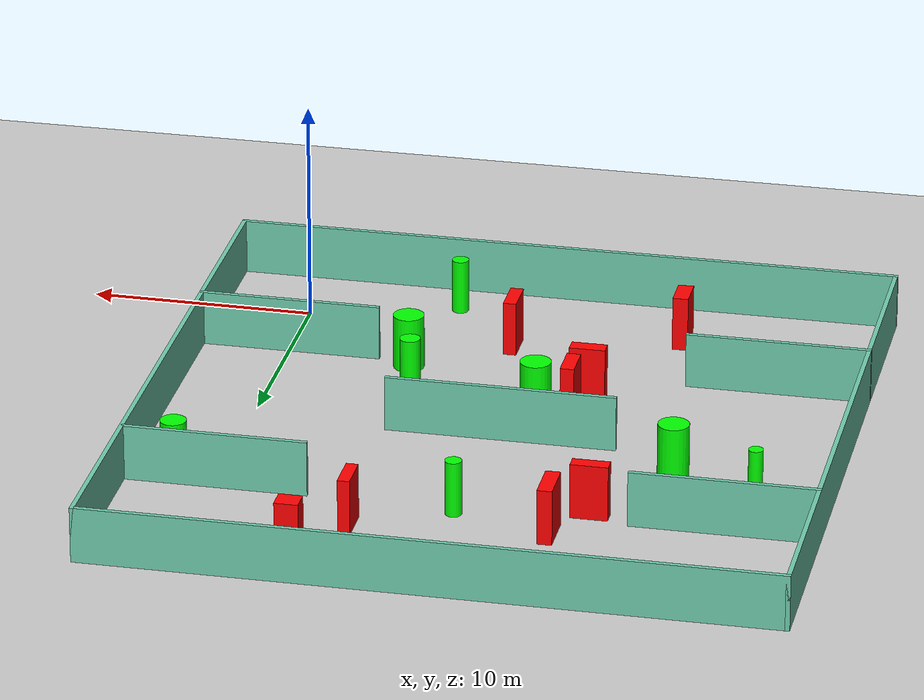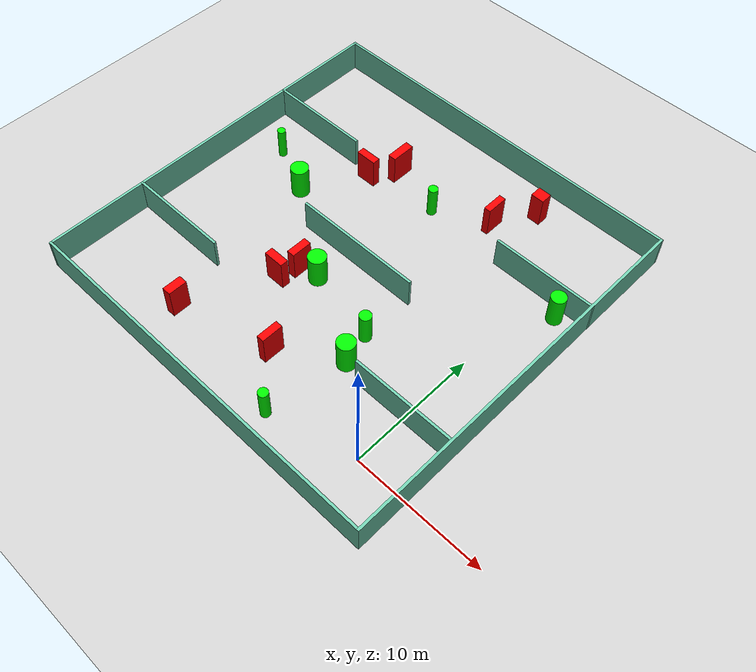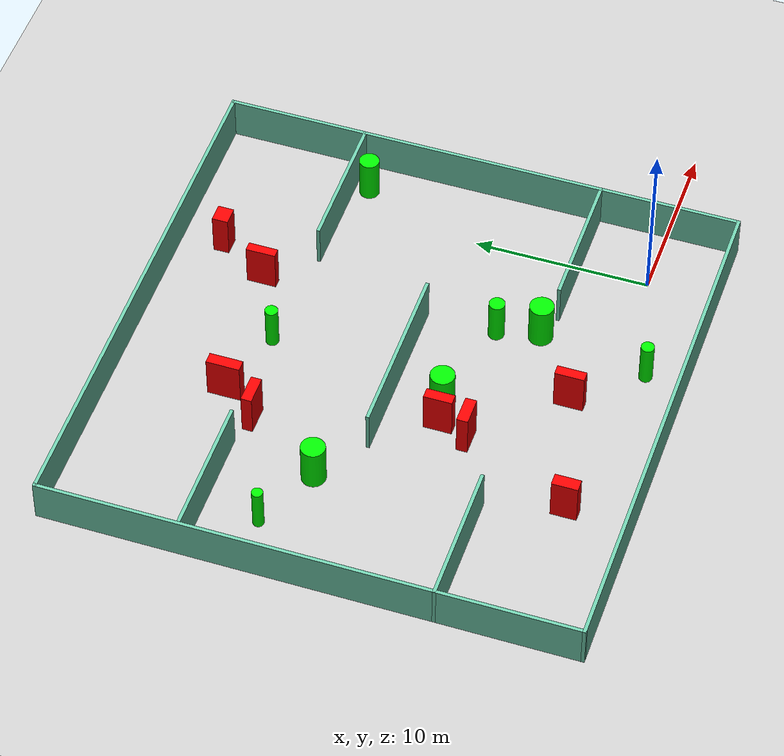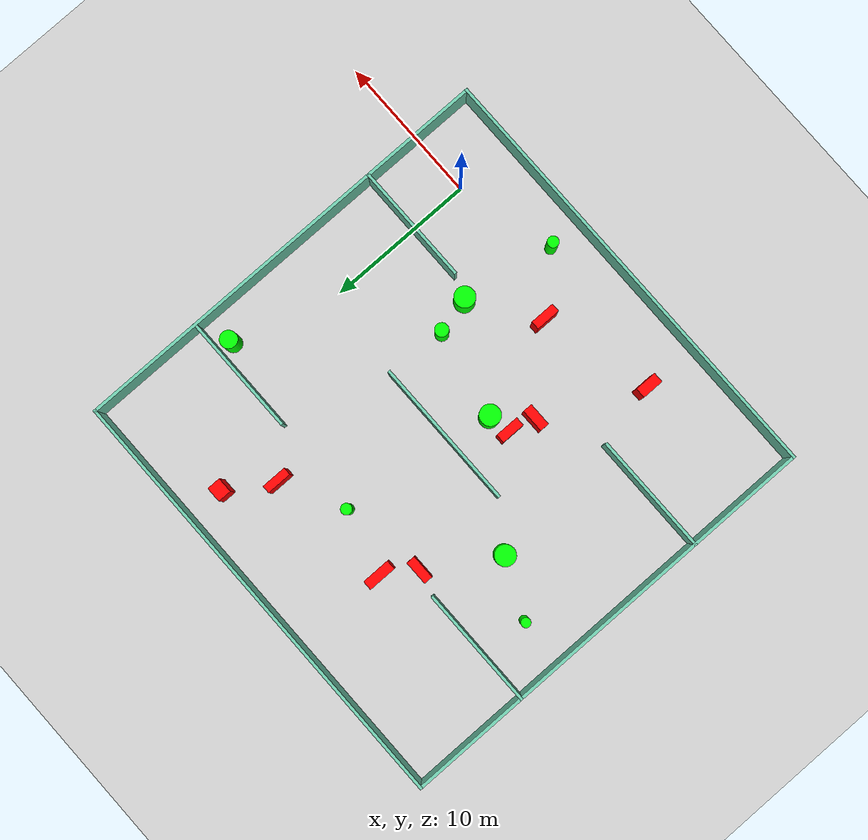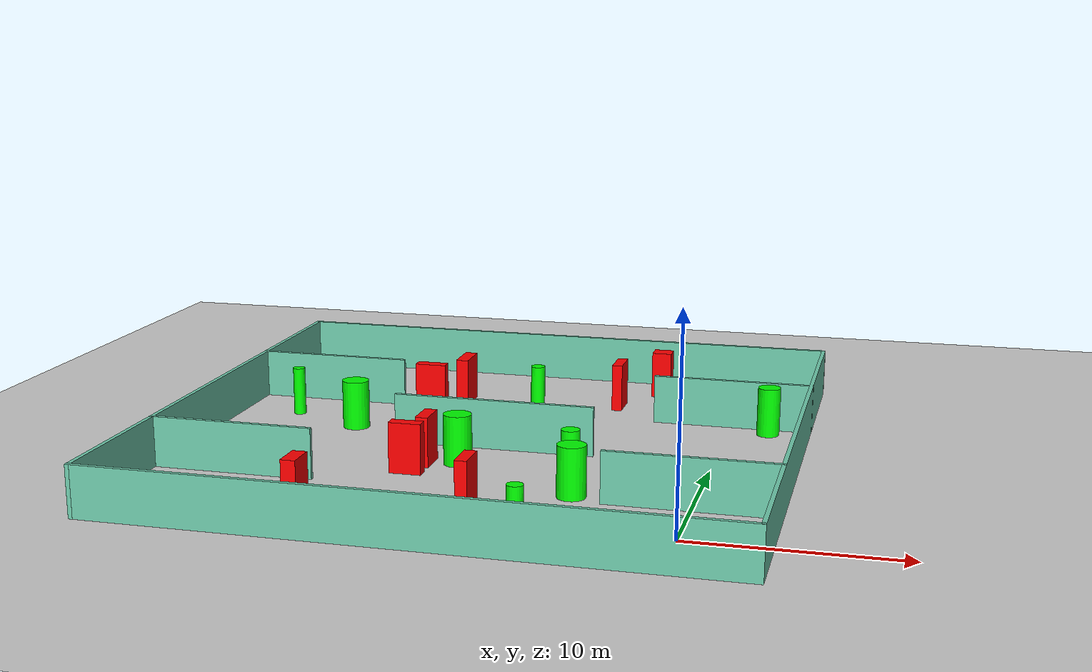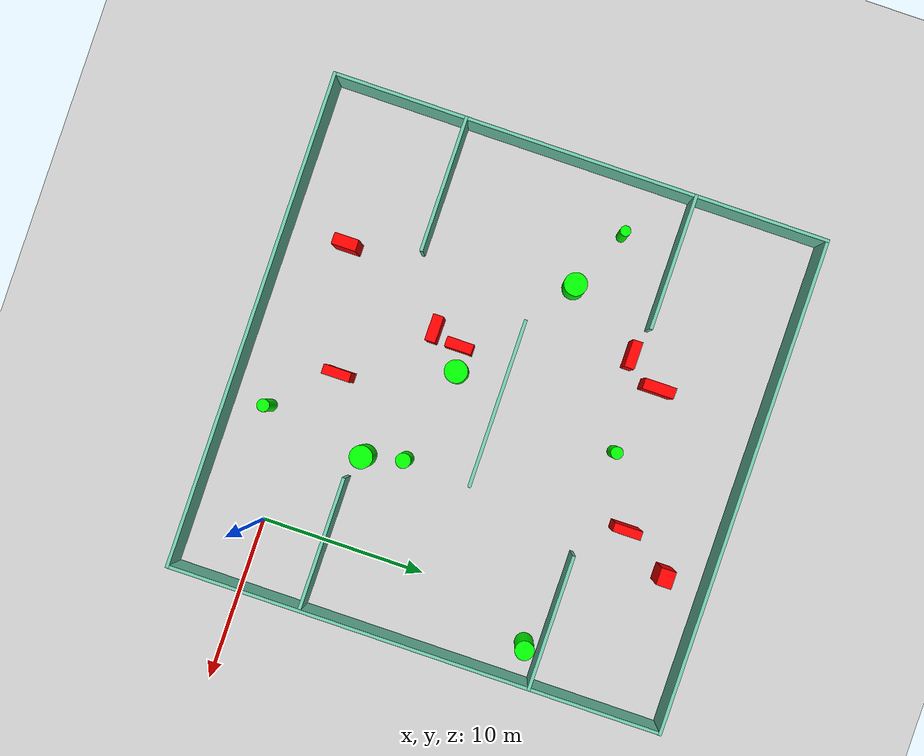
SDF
<sdf version="1.7">
 <world name="default">
  <light name="sun" type="directional">
   <pose>0 0 10 0 -0 0</pose>
   <diffuse>0.8 0.8 0.8 1</diffuse>
   <specular>0.2 0.2 0.2 1</specular>
   <attenuation>
    <range>1000</range>
    <constant>0.9</constant>
    <linear>0.01</linear>
    <quadratic>0.001</quadratic>
   </attenuation>
   <direction>-0.5 0.1 -0.9</direction>
   <spot><inner_angle>0</inner_angle><outer_angle>0</outer_angle><falloff>0</falloff></spot>
  </light>
  <model name="ground_plane">
   <static>1</static>
   <link name="link">
    <collision name="collision">
     <geometry><plane><normal>0 0 1</normal><size>100 100</size></plane></geometry>
     <surface>
      <contact><collide_bitmask>65535</collide_bitmask></contact>
      <friction><ode><mu>100</mu><mu2>50</mu2></ode></friction>
     </surface>
    </collision>
    <visual name="visual">
     <cast_shadows>0</cast_shadows>
     <geometry><plane><normal>0 0 1</normal><size>100 100</size></plane></geometry>
     <material>
      <script><uri>file://media/materials/scripts/gazebo.material</uri><name>Gazebo/Grey</name></script>
     </material>
    </visual>
   </link>
  </model>
  <gravity>0 0 -9.8</gravity>
  <magnetic_field>6e-06 2.3e-05 -4.2e-05</magnetic_field>
  <atmosphere type="adiabatic"/>
  <physics type="ode">
   <max_step_size>0.001</max_step_size>
   <real_time_factor>1</real_time_factor>
   <real_time_update_rate>1000</real_time_update_rate>
  </physics>
  <scene><ambient>0.4 0.4 0.4 1</ambient><background>0.7 0.7 0.7 1</background><shadows>1</shadows></scene>
  <spherical_coordinates>
   <surface_model>EARTH_WGS84</surface_model>
   <latitude_deg>0</latitude_deg>
   <longitude_deg>0</longitude_deg>
   <elevation>0</elevation>
   <heading_deg>0</heading_deg>
  </spherical_coordinates>
  <model name="my_base_walls">
   <link name="Wall_10">
    <collision name="Wall_10_Collision">
     <geometry><box><size>8.2 0.2 2.5</size></box></geometry>
     <pose>0 0 1.25 0 -0 0</pose>
    </collision>
    <visual name="Wall_10_Visual">
     <pose>0 0 1.25 0 -0 0</pose>
     <geometry><box><size>8.2 0.2 2.5</size></box></geometry>
     <material>
      <script><uri>file://media/materials/scripts/gazebo.material</uri><name>Gazebo/Grey</name></script>
      <ambient>0.435294 0.796078 0.67451 1</ambient>
     </material>
     <meta><layer>0</layer></meta>
    </visual>
    <pose>-11 -7 0 0 -0 0</pose>
   </link>
   <link name="Wall_12">
    <collision name="Wall_12_Collision">
     <geometry><box><size>8.2 0.2 2.5</size></box></geometry>
     <pose>0 0 1.25 0 -0 0</pose>
    </collision>
    <visual name="Wall_12_Visual">
     <pose>0 0 1.25 0 -0 0</pose>
     <geometry><box><size>8.2 0.2 2.5</size></box></geometry>
     <material>
      <script><uri>file://media/materials/scripts/gazebo.material</uri><name>Gazebo/Grey</name></script>
      <ambient>0.435294 0.796078 0.67451 1</ambient>
     </material>
     <meta><layer>0</layer></meta>
    </visual>
    <pose>-11 7 0 0 -0 0</pose>
   </link>
   <link name="Wall_14">
    <collision name="Wall_14_Collision">
     <geometry><box><size>8.2 0.2 2.5</size></box></geometry>
     <pose>0 0 1.25 0 -0 0</pose>
    </collision>
    <visual name="Wall_14_Visual">
     <pose>0 0 1.25 0 -0 0</pose>
     <geometry><box><size>8.2 0.2 2.5</size></box></geometry>
     <material>
      <script><uri>file://media/materials/scripts/gazebo.material</uri><name>Gazebo/Grey</name></script>
      <ambient>0.435294 0.796078 0.67451 1</ambient>
     </material>
     <meta><layer>0</layer></meta>
    </visual>
    <pose>11 7 0 0 -0 3.14159</pose>
   </link>
   <link name="Wall_16">
    <collision name="Wall_16_Collision">
     <geometry><box><size>10.2 0.2 2.5</size></box></geometry>
     <pose>0 0 1.25 0 -0 0</pose>
    </collision>
    <visual name="Wall_16_Visual">
     <pose>0 0 1.25 0 -0 0</pose>
     <geometry><box><size>10.2 0.2 2.5</size></box></geometry>
     <material>
      <script><uri>file://media/materials/scripts/gazebo.material</uri><name>Gazebo/Grey</name></script>
      <ambient>0.435294 0.796078 0.67451 1</ambient>
     </material>
     <meta><layer>0</layer></meta>
    </visual>
    <pose>0 0 0 0 -0 3.14159</pose>
   </link>
   <link name="Wall_2">
    <collision name="Wall_2_Collision">
     <geometry><box><size>30.2 0.2 2.5</size></box></geometry>
     <pose>0 0 1.25 0 -0 0</pose>
    </collision>
    <visual name="Wall_2_Visual">
     <pose>0 0 1.25 0 -0 0</pose>
     <geometry><box><size>30.2 0.2 2.5</size></box></geometry>
     <material>
      <script><uri>file://media/materials/scripts/gazebo.material</uri><name>Gazebo/Grey</name></script>
      <ambient>0.435294 0.796078 0.67451 1</ambient>
     </material>
     <meta><layer>0</layer></meta>
    </visual>
    <pose>0 -15 0 0 -0 3.14159</pose>
   </link>
   <link name="Wall_3">
    <collision name="Wall_3_Collision">
     <geometry><box><size>30.2 0.2 2.5</size></box></geometry>
     <pose>0 0 1.25 0 -0 0</pose>
    </collision>
    <visual name="Wall_3_Visual">
     <pose>0 0 1.25 0 -0 0</pose>
     <geometry><box><size>30.2 0.2 2.5</size></box></geometry>
     <material>
      <script><uri>file://media/materials/scripts/gazebo.material</uri><name>Gazebo/Grey</name></script>
      <ambient>0.435294 0.796078 0.67451 1</ambient>
     </material>
     <meta><layer>0</layer></meta>
    </visual>
    <pose>-15 0 0 0 -0 1.5708</pose>
   </link>
   <link name="Wall_4">
    <collision name="Wall_4_Collision">
     <geometry><box><size>30.2 0.2 2.5</size></box></geometry>
     <pose>0 0 1.25 0 -0 0</pose>
    </collision>
    <visual name="Wall_4_Visual">
     <pose>0 0 1.25 0 -0 0</pose>
     <geometry><box><size>30.2 0.2 2.5</size></box></geometry>
     <material>
      <script><uri>file://media/materials/scripts/gazebo.material</uri><name>Gazebo/Grey</name></script>
      <ambient>0.435294 0.796078 0.67451 1</ambient>
     </material>
     <meta><layer>0</layer></meta>
    </visual>
    <pose>0 15 0 0 -0 0</pose>
   </link>
   <link name="Wall_6">
    <collision name="Wall_6_Collision">
     <geometry><box><size>30.2 0.2 2.5</size></box></geometry>
     <pose>0 0 1.25 0 -0 0</pose>
    </collision>
    <visual name="Wall_6_Visual">
     <pose>0 0 1.25 0 -0 0</pose>
     <geometry><box><size>30.2 0.2 2.5</size></box></geometry>
     <material>
      <script><uri>file://media/materials/scripts/gazebo.material</uri><name>Gazebo/Grey</name></script>
      <ambient>0.435294 0.796078 0.67451 1</ambient>
     </material>
     <meta><layer>0</layer></meta>
    </visual>
    <pose>15 0 0 0 -0 1.5708</pose>
   </link>
   <link name="Wall_8">
    <collision name="Wall_8_Collision">
     <geometry><box><size>8.2 0.2 2.5</size></box></geometry>
     <pose>0 0 1.25 0 -0 0</pose>
    </collision>
    <visual name="Wall_8_Visual">
     <pose>0 0 1.25 0 -0 0</pose>
     <geometry><box><size>8.2 0.2 2.5</size></box></geometry>
     <material>
      <script><uri>file://media/materials/scripts/gazebo.material</uri><name>Gazebo/Grey</name></script>
      <ambient>0.435294 0.796078 0.67451 1</ambient>
     </material>
     <meta><layer>0</layer></meta>
    </visual>
    <pose>11 -7 0 0 -0 3.14159</pose>
   </link>
   <static>1</static>
   <pose>-11 11 0 0 -0 0</pose>
  </model>
  <model name="cylinder1">
   <static>1</static>
   <link name="link">
    <inertial>
     <mass>1</mass>
     <inertia><ixx>0.5</ixx><ixy>0</ixy><ixz>0</ixz><iyy>0.5</iyy><iyz>0</iyz><izz>1</izz></inertia>
    </inertial>
    <collision name="collision">
     <geometry><cylinder><radius>0.45344261995893737</radius><length>2.5</length></cylinder></geometry>
    </collision>
    <visual name="visual">
     <geometry><cylinder><radius>0.45344261995893737</radius><length>2.5</length></cylinder></geometry>
     <material>
      <ambient>0 1 0 1</ambient>
      <diffuse>0 1 0 1</diffuse>
      <specular>0.1 0.1 0.1 1</specular>
      <emissive>0 0 0 0</emissive>
     </material>
    </visual>
   </link>
   <pose>-6.1352704159999085 6.916691660784151 1.25 0 0 0</pose>
  </model>
  <model name="cylinder2">
   <static>1</static>
   <link name="link">
    <inertial>
     <mass>1</mass>
     <inertia><ixx>0.5</ixx><ixy>0</ixy><ixz>0</ixz><iyy>0.5</iyy><iyz>0</iyz><izz>1</izz></inertia>
    </inertial>
    <collision name="collision">
     <geometry><cylinder><radius>0.3752334312176133</radius><length>2.5</length></cylinder></geometry>
    </collision>
    <visual name="visual">
     <geometry><cylinder><radius>0.3752334312176133</radius><length>2.5</length></cylinder></geometry>
     <material>
      <ambient>0 1 0 1</ambient>
      <diffuse>0 1 0 1</diffuse>
      <specular>0.1 0.1 0.1 1</specular>
      <emissive>0 0 0 0</emissive>
     </material>
    </visual>
   </link>
   <pose>-6.559453560829072 -1.7537656227248868 1.25 0 0 0</pose>
  </model>
  <model name="cylinder3">
   <static>1</static>
   <link name="link">
    <inertial>
     <mass>1</mass>
     <inertia><ixx>0.5</ixx><ixy>0</ixy><ixz>0</ixz><iyy>0.5</iyy><iyz>0</iyz><izz>1</izz></inertia>
    </inertial>
    <collision name="collision">
     <geometry><cylinder><radius>0.6887467670775544</radius><length>2.5</length></cylinder></geometry>
    </collision>
    <visual name="visual">
     <geometry><cylinder><radius>0.6887467670775544</radius><length>2.5</length></cylinder></geometry>
     <material>
      <ambient>0 1 0 1</ambient>
      <diffuse>0 1 0 1</diffuse>
      <specular>0.1 0.1 0.1 1</specular>
      <emissive>0 0 0 0</emissive>
     </material>
    </visual>
   </link>
   <pose>-5.546667233819985 4.538153213615276 1.25 0 0 0</pose>
  </model>
  <model name="cylinder4">
   <static>1</static>
   <link name="link">
    <inertial>
     <mass>1</mass>
     <inertia><ixx>0.5</ixx><ixy>0</ixy><ixz>0</ixz><iyy>0.5</iyy><iyz>0</iyz><izz>1</izz></inertia>
    </inertial>
    <collision name="collision">
     <geometry><cylinder><radius>0.6889148988796123</radius><length>2.5</length></cylinder></geometry>
    </collision>
    <visual name="visual">
     <geometry><cylinder><radius>0.6889148988796123</radius><length>2.5</length></cylinder></geometry>
     <material>
      <ambient>0 1 0 1</ambient>
      <diffuse>0 1 0 1</diffuse>
      <specular>0.1 0.1 0.1 1</specular>
      <emissive>0 0 0 0</emissive>
     </material>
    </visual>
   </link>
   <pose>-18.955718595273964 13.057890873281078 1.25 0 0 0</pose>
  </model>
  <model name="cylinder5">
   <static>1</static>
   <link name="link">
    <inertial>
     <mass>1</mass>
     <inertia><ixx>0.5</ixx><ixy>0</ixy><ixz>0</ixz><iyy>0.5</iyy><iyz>0</iyz><izz>1</izz></inertia>
    </inertial>
    <collision name="collision">
     <geometry><cylinder><radius>0.36796601957130665</radius><length>2.5</length></cylinder></geometry>
    </collision>
    <visual name="visual">
     <geometry><cylinder><radius>0.36796601957130665</radius><length>2.5</length></cylinder></geometry>
     <material>
      <ambient>0 1 0 1</ambient>
      <diffuse>0 1 0 1</diffuse>
      <specular>0.1 0.1 0.1 1</specular>
      <emissive>0 0 0 0</emissive>
     </material>
    </visual>
   </link>
   <pose>-10.521550802481519 18.437373559480267 1.25 0 0 0</pose>
  </model>
  <model name="cylinder6">
   <static>1</static>
   <link name="link">
    <inertial>
     <mass>1</mass>
     <inertia><ixx>0.5</ixx><ixy>0</ixy><ixz>0</ixz><iyy>0.5</iyy><iyz>0</iyz><izz>1</izz></inertia>
    </inertial>
    <collision name="collision">
     <geometry><cylinder><radius>0.5751887224881173</radius><length>2.5</length></cylinder></geometry>
    </collision>
    <visual name="visual">
     <geometry><cylinder><radius>0.5751887224881173</radius><length>2.5</length></cylinder></geometry>
     <material>
      <ambient>0 1 0 1</ambient>
      <diffuse>0 1 0 1</diffuse>
      <specular>0.1 0.1 0.1 1</specular>
      <emissive>0 0 0 0</emissive>
     </material>
    </visual>
   </link>
   <pose>1.9745359330041339 17.058799900431325 1.25 0 0 0</pose>
  </model>
  <model name="cylinder7">
   <static>1</static>
   <link name="link">
    <inertial>
     <mass>1</mass>
     <inertia><ixx>0.5</ixx><ixy>0</ixy><ixz>0</ixz><iyy>0.5</iyy><iyz>0</iyz><izz>1</izz></inertia>
    </inertial>
    <collision name="collision">
     <geometry><cylinder><radius>0.315434996236496</radius><length>2.5</length></cylinder></geometry>
    </collision>
    <visual name="visual">
     <geometry><cylinder><radius>0.315434996236496</radius><length>2.5</length></cylinder></geometry>
     <material>
      <ambient>0 1 0 1</ambient>
      <diffuse>0 1 0 1</diffuse>
      <specular>0.1 0.1 0.1 1</specular>
      <emissive>0 0 0 0</emissive>
     </material>
    </visual>
   </link>
   <pose>-22.787054475274687 14.790238040677078 1.25 0 0 0</pose>
  </model>
  <model name="cylinder8">
   <static>1</static>
   <link name="link">
    <inertial>
     <mass>1</mass>
     <inertia><ixx>0.5</ixx><ixy>0</ixy><ixz>0</ixz><iyy>0.5</iyy><iyz>0</iyz><izz>1</izz></inertia>
    </inertial>
    <collision name="collision">
     <geometry><cylinder><radius>0.6924642510337404</radius><length>2.5</length></cylinder></geometry>
    </collision>
    <visual name="visual">
     <geometry><cylinder><radius>0.6924642510337404</radius><length>2.5</length></cylinder></geometry>
     <material>
      <ambient>0 1 0 1</ambient>
      <diffuse>0 1 0 1</diffuse>
      <specular>0.1 0.1 0.1 1</specular>
      <emissive>0 0 0 0</emissive>
     </material>
    </visual>
   </link>
   <pose>-11.984266274353296 8.139325964644543 1.25 0 0 0</pose>
  </model>
  <model name="box1">
   <static>1</static>
   <link name="link">
    <inertial>
     <mass>1</mass>
     <inertia><ixx>0.083</ixx><ixy>0</ixy><ixz>0</ixz><iyy>0.083</iyy><iyz>0</iyz><izz>0.083</izz></inertia>
    </inertial>
    <collision name="collision">
     <geometry><box><size>1.5899139085785894 0.6375955648909936 2.5</size></box></geometry>
    </collision>
    <visual name="visual">
     <geometry><box><size>1.5899139085785894 0.6375955648909936 2.5</size></box></geometry>
     <material>
      <ambient>1 0 0 1</ambient>
      <diffuse>1 0 0 1</diffuse>
      <specular>0.1 0.1 0.1 1</specular>
      <emissive>0 0 0 0</emissive>
     </material>
    </visual>
    <sensor name="my_contact" type="contact">
     <contact><collision>box_collision</collision><topic>__default_topic__</topic></contact>
    </sensor>
   </link>
   <pose>-13.934913723929386 6.151968755910678 1.25 0 0 0</pose>
  </model>
  <model name="box2">
   <static>1</static>
   <link name="link">
    <inertial>
     <mass>1</mass>
     <inertia><ixx>0.083</ixx><ixy>0</ixy><ixz>0</ixz><iyy>0.083</iyy><iyz>0</iyz><izz>0.083</izz></inertia>
    </inertial>
    <collision name="collision">
     <geometry><box><size>0.6166668810845813 1.6119250962248912 2.5</size></box></geometry>
    </collision>
    <visual name="visual">
     <geometry><box><size>0.6166668810845813 1.6119250962248912 2.5</size></box></geometry>
     <material>
      <ambient>1 0 0 1</ambient>
      <diffuse>1 0 0 1</diffuse>
      <specular>0.1 0.1 0.1 1</specular>
      <emissive>0 0 0 0</emissive>
     </material>
    </visual>
    <sensor name="my_contact" type="contact">
     <contact><collision>box_collision</collision><topic>__default_topic__</topic></contact>
    </sensor>
   </link>
   <pose>-13.465153015121093 7.835042265849273 1.25 0 0 0</pose>
  </model>
  <model name="box3">
   <static>1</static>
   <link name="link">
    <inertial>
     <mass>1</mass>
     <inertia><ixx>0.083</ixx><ixy>0</ixy><ixz>0</ixz><iyy>0.083</iyy><iyz>0</iyz><izz>0.083</izz></inertia>
    </inertial>
    <collision name="collision">
     <geometry><box><size>1.0355570588897205 0.9157362451116257 2.5</size></box></geometry>
    </collision>
    <visual name="visual">
     <geometry><box><size>1.0355570588897205 0.9157362451116257 2.5</size></box></geometry>
     <material>
      <ambient>1 0 0 1</ambient>
      <diffuse>1 0 0 1</diffuse>
      <specular>0.1 0.1 0.1 1</specular>
      <emissive>0 0 0 0</emissive>
     </material>
    </visual>
    <sensor name="my_contact" type="contact">
     <contact><collision>box_collision</collision><topic>__default_topic__</topic></contact>
    </sensor>
   </link>
   <pose>-4.587105224567795 23.459613971715974 1.25 0 0 0</pose>
  </model>
  <model name="box4">
   <static>1</static>
   <link name="link">
    <inertial>
     <mass>1</mass>
     <inertia><ixx>0.083</ixx><ixy>0</ixy><ixz>0</ixz><iyy>0.083</iyy><iyz>0</iyz><izz>0.083</izz></inertia>
    </inertial>
    <collision name="collision">
     <geometry><box><size>1.640813884516305 0.6064946783139276 2.5</size></box></geometry>
    </collision>
    <visual name="visual">
     <geometry><box><size>1.640813884516305 0.6064946783139276 2.5</size></box></geometry>
     <material>
      <ambient>1 0 0 1</ambient>
      <diffuse>1 0 0 1</diffuse>
      <specular>0.1 0.1 0.1 1</specular>
      <emissive>0 0 0 0</emissive>
     </material>
    </visual>
    <sensor name="my_contact" type="contact">
     <contact><collision>box_collision</collision><topic>__default_topic__</topic></contact>
    </sensor>
   </link>
   <pose>-16.20132265246403 17.52972773652754 1.25 0 0 0</pose>
  </model>
  <model name="box5">
   <static>1</static>
   <link name="link">
    <inertial>
     <mass>1</mass>
     <inertia><ixx>0.083</ixx><ixy>0</ixy><ixz>0</ixz><iyy>0.083</iyy><iyz>0</iyz><izz>0.083</izz></inertia>
    </inertial>
    <collision name="collision">
     <geometry><box><size>0.5284115130029235 1.6949677006453914 2.5</size></box></geometry>
    </collision>
    <visual name="visual">
     <geometry><box><size>0.5284115130029235 1.6949677006453914 2.5</size></box></geometry>
     <material>
      <ambient>1 0 0 1</ambient>
      <diffuse>1 0 0 1</diffuse>
      <specular>0.1 0.1 0.1 1</specular>
      <emissive>0 0 0 0</emissive>
     </material>
    </visual>
    <sensor name="my_contact" type="contact">
     <contact><collision>box_collision</collision><topic>__default_topic__</topic></contact>
    </sensor>
   </link>
   <pose>-6.433688393973192 20.476408648967023 1.25 0 0 0</pose>
  </model>
  <model name="box6">
   <static>1</static>
   <link name="link">
    <inertial>
     <mass>1</mass>
     <inertia><ixx>0.083</ixx><ixy>0</ixy><ixz>0</ixz><iyy>0.083</iyy><iyz>0</iyz><izz>0.083</izz></inertia>
    </inertial>
    <collision name="collision">
     <geometry><box><size>0.6509092762730972 1.910763239616157 2.5</size></box></geometry>
    </collision>
    <visual name="visual">
     <geometry><box><size>0.6509092762730972 1.910763239616157 2.5</size></box></geometry>
     <material>
      <ambient>1 0 0 1</ambient>
      <diffuse>1 0 0 1</diffuse>
      <specular>0.1 0.1 0.1 1</specular>
      <emissive>0 0 0 0</emissive>
     </material>
    </visual>
    <sensor name="my_contact" type="contact">
     <contact><collision>box_collision</collision><topic>__default_topic__</topic></contact>
    </sensor>
   </link>
   <pose>-14.828969324524065 19.56769800743306 1.25 0 0 0</pose>
  </model>
  <model name="box7">
   <static>1</static>
   <link name="link">
    <inertial>
     <mass>1</mass>
     <inertia><ixx>0.083</ixx><ixy>0</ixy><ixz>0</ixz><iyy>0.083</iyy><iyz>0</iyz><izz>0.083</izz></inertia>
    </inertial>
    <collision name="collision">
     <geometry><box><size>0.5782931624560262 1.675018569279223 2.5</size></box></geometry>
    </collision>
    <visual name="visual">
     <geometry><box><size>0.5782931624560262 1.675018569279223 2.5</size></box></geometry>
     <material>
      <ambient>1 0 0 1</ambient>
      <diffuse>1 0 0 1</diffuse>
      <specular>0.1 0.1 0.1 1</specular>
      <emissive>0 0 0 0</emissive>
     </material>
    </visual>
    <sensor name="my_contact" type="contact">
     <contact><collision>box_collision</collision><topic>__default_topic__</topic></contact>
    </sensor>
   </link>
   <pose>-9.679169736954998 1.6436654500289585 1.25 0 0 0</pose>
  </model>
  <model name="box8">
   <static>1</static>
   <link name="link">
    <inertial>
     <mass>1</mass>
     <inertia><ixx>0.083</ixx><ixy>0</ixy><ixz>0</ixz><iyy>0.083</iyy><iyz>0</iyz><izz>0.083</izz></inertia>
    </inertial>
    <collision name="collision">
     <geometry><box><size>0.6966220678327849 1.4676390000329602 2.5</size></box></geometry>
    </collision>
    <visual name="visual">
     <geometry><box><size>0.6966220678327849 1.4676390000329602 2.5</size></box></geometry>
     <material>
      <ambient>1 0 0 1</ambient>
      <diffuse>1 0 0 1</diffuse>
      <specular>0.1 0.1 0.1 1</specular>
      <emissive>0 0 0 0</emissive>
     </material>
    </visual>
    <sensor name="my_contact" type="contact">
     <contact><collision>box_collision</collision><topic>__default_topic__</topic></contact>
    </sensor>
   </link>
   <pose>-16.997746404601898 -0.316384498897079 1.25 0 0 0</pose>
  </model>
 </world>
</sdf>
